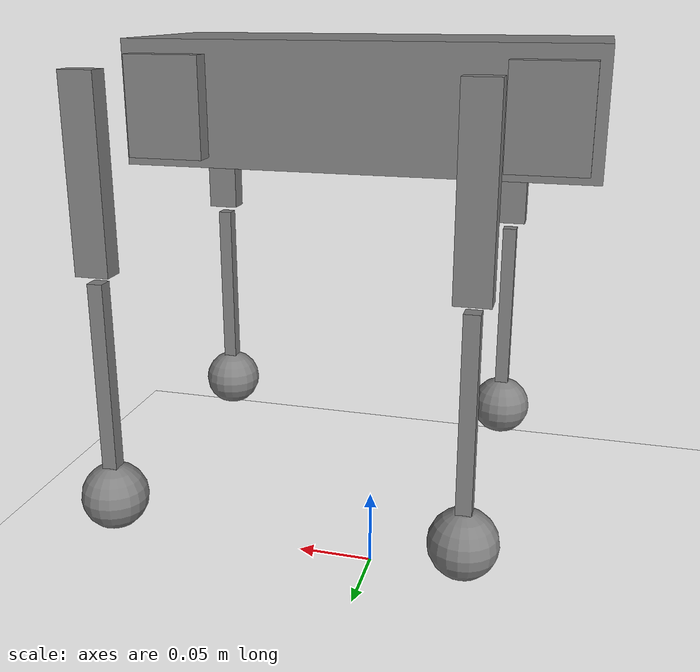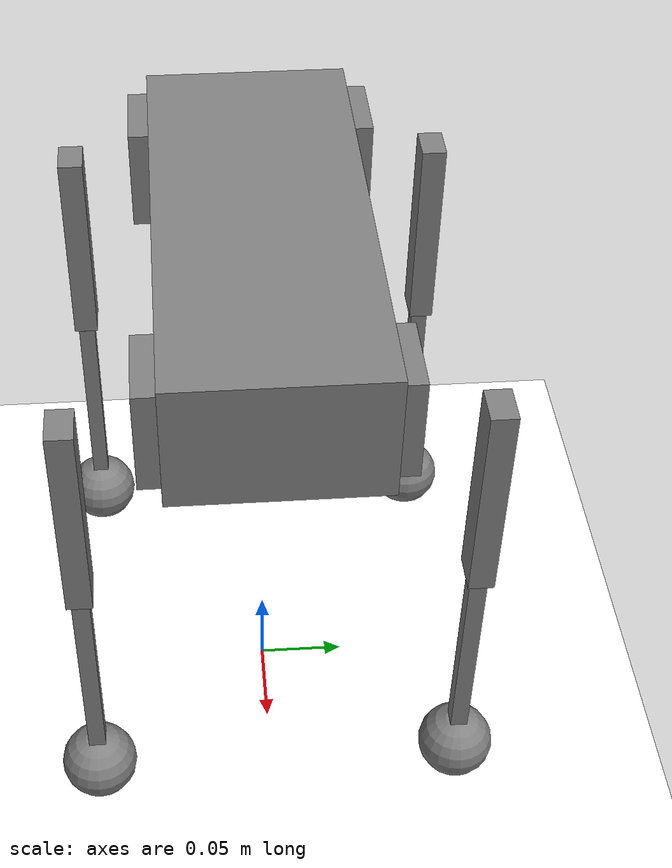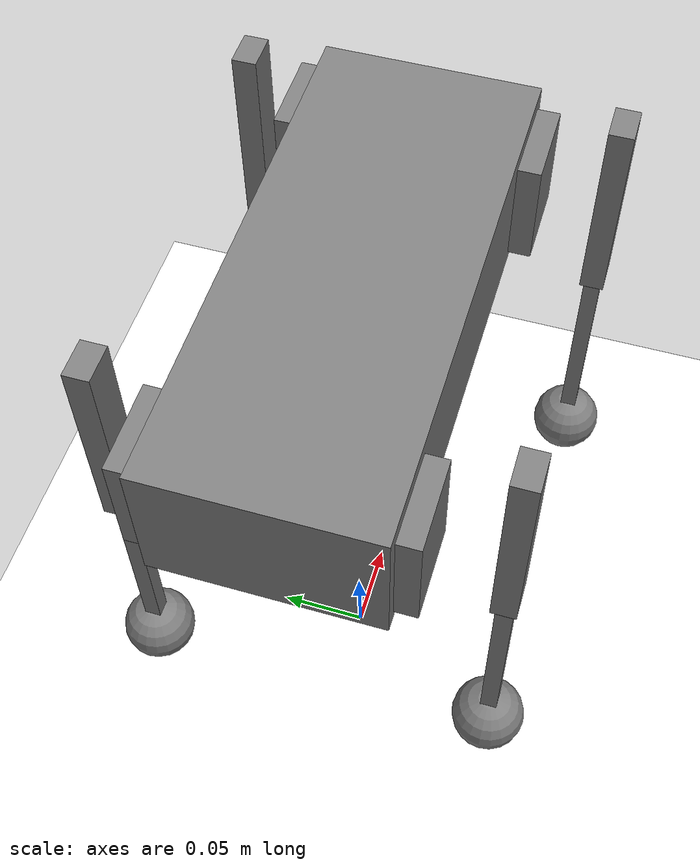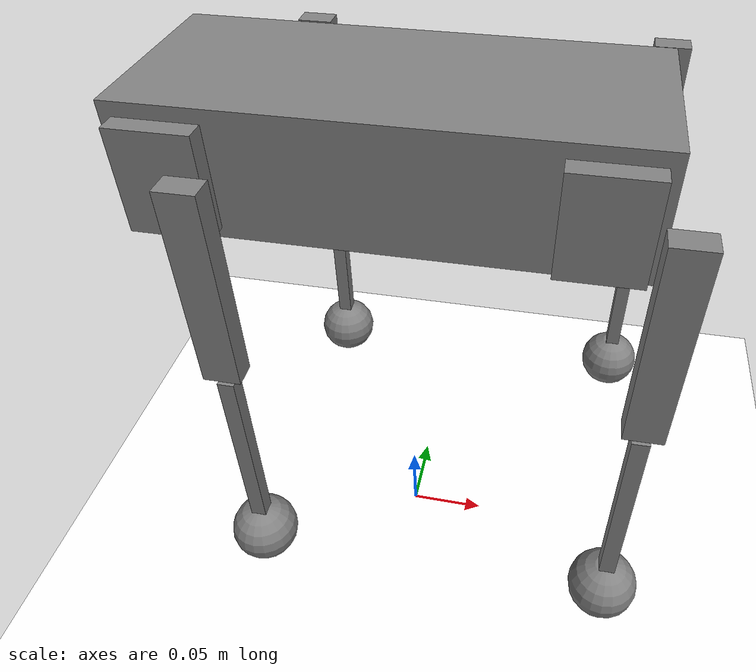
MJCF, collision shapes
<mujoco model="scene">
    <include file="dog.xml"/>

    <visual>
        <headlight diffuse="0.6 0.6 0.6" ambient="0.3 0.3 0.3" specular="0 0 0"/>
        <rgba haze="0.15 0.25 0.35 1"/>
        <global azimuth="160" elevation="-20"/>
    </visual>

    <asset>
        <texture type="skybox" builtin="gradient" rgb1="1 1 1" rgb2="1 1 1" width="800" height="800"/>
        <texture type="2d" name="groundplane" builtin="checker" mark="edge" rgb1="1 1 1" rgb2="1 1 1" markrgb="0 0 0"
            width="300" height="300"/>
        <material name="groundplane" texture="groundplane" texuniform="true" texrepeat="5 5" reflectance="0"/>
    </asset>

    <worldbody>
        <body name="floor">
            <geom name="floor" size="0 0 0.01" type="plane" material="groundplane" contype="1" conaffinity="0"
                priority="1" friction="0.6" condim="3"/>
        </body>
    </worldbody>

    <keyframe>
        <!-- qpos: 7 (freejoint: x y z qw qx qy qz) + 12 (joints in order) -->
        <!-- Joint order: FR_hip, FR_thigh, FR_calf, FL_hip, FL_thigh, FL_calf,
                          RR_hip, RR_thigh, RR_calf, RL_hip, RL_thigh, RL_calf -->
        <key name="home"
            qpos="
    0 0 0.30
    1 0 0 0
      0.0
      0.67
      -1.3
      0.0
      0.67
      -1.3
      0.0
      0.67
      -1.3
      0.0
      0.67
      -1.3
"
            ctrl="
      0.0
      0.67
      -1.3
      0.0
      0.67
      -1.3
      0.0
      0.67
      -1.3
      0.0
      0.67
      -1.3
"/>
    </keyframe>
</mujoco>

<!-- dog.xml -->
<!-- MuJoCo model for quadruped dog robot -->
<!-- Converted from URDF: my_assets/dog_urdf/urdf/dog.urdf -->
<mujoco model="dog">

  <option iterations="1" ls_iterations="5">
    <flag eulerdamp="disable"/>
  </option>
  <compiler angle="radian" meshdir="assets"/>

  <default>
    <default class="dog">
      <joint frictionloss="0.1" armature="0.005"/>
      <position kp="50" dampratio="1"/>
      <default class="visual">
        <geom type="mesh" contype="0" conaffinity="0" group="2"/>
      </default>
      <default class="collision">
        <geom group="3"/>
      </default>
    </default>
  </default>

  <!-- Additional sensors.xml -->
  <sensor>
    <gyro site="imu" name="gyro"/>
    <velocimeter site="imu" name="local_linvel"/>
    <accelerometer site="imu" name="accelerometer"/>
    <framezaxis objtype="site" objname="imu" name="upvector"/>
    <framexaxis objtype="site" objname="imu" name="forwardvector"/>
    <framelinvel objtype="site" objname="imu" name="global_linvel"/>
    <frameangvel objtype="site" objname="imu" name="global_angvel"/>
    <framepos objtype="site" objname="imu" name="position"/>
    <framequat objtype="site" objname="imu" name="orientation"/>
    <framelinvel objtype="site" objname="FR_foot" name="FR_foot_global_linvel"/>
    <framelinvel objtype="site" objname="FL_foot" name="FL_foot_global_linvel"/>
    <framelinvel objtype="site" objname="RR_foot" name="RR_foot_global_linvel"/>
    <framelinvel objtype="site" objname="RL_foot" name="RL_foot_global_linvel"/>
    <framezaxis objtype="site" objname="FR_foot" name="FR_foot_upvector"/>
    <framezaxis objtype="site" objname="FL_foot" name="FL_foot_upvector"/>
    <framezaxis objtype="site" objname="RR_foot" name="RR_foot_upvector"/>
    <framezaxis objtype="site" objname="RL_foot" name="RL_foot_upvector"/>
    <framepos objtype="site" objname="FR_foot" name="FR_foot_pos"/>
    <framepos objtype="site" objname="FL_foot" name="FL_foot_pos"/>
    <framepos objtype="site" objname="RR_foot" name="RR_foot_pos"/>
    <framepos objtype="site" objname="RL_foot" name="RL_foot_pos"/>
  </sensor>

  <!-- Additional joints_properties.xml -->
  <default>
    <default class="dog_motor">
      <geom contype="0" conaffinity="0"/>
      <joint damping="0.60" frictionloss="0.052" armature="0.028"/>
      <position kp="17.8" kv="0.0" forcerange="-3.35 3.35"/>
    </default>
    <default class="backlash">
      <!-- +/- 0.5 deg of backlash -->
      <joint damping="0.01" frictionloss="0" armature="0.01" limited="true"
        range="-0.008726646259971648 0.008726646259971648"/>
    </default>
  </default>

  <worldbody>
    <body name="base" pos="0 0 0.30">
      <freejoint name="floating_base"/>
      <site name="imu" pos="0.0 0.0 0.02"/>

      <!-- Link trunk -->
      <body name="trunk" pos="0 0 0" childclass="dog">
        <inertial pos="-0.0000265 0.0000000 0.0055159" mass="1.1320046"
          fullinertia="0.0014531 0.0060976 0.0071152 -0.0000092 -0.0000001 0.0000000"/>
        <!-- Visual: trunk -->
        <geom type="mesh" class="visual" mesh="trunk" material="trunk_material"/>
        <!-- Collision: trunk box -->
        <geom class="collision" type="box" size="0.1325 0.05475 0.035" pos="0 0 0.01"/>

        <!-- ==================== FR (Front-Right) leg ==================== -->
        <body name="FR_hip" pos="0.1305 -0.03923 0.019">
          <joint name="FR_hip_joint" type="hinge" axis="1 0 0"
            range="-0.802851455917 0.802851455917" class="dog_motor"/>
          <inertial pos="-0.0267598 -0.0023151 -0.0094611" mass="0.0843956"
            fullinertia="0.0000207 0.0000234 0.0000146 -0.0000004 0.0000002 0.0000001"/>
          <geom type="mesh" class="visual" mesh="FR_hip" material="hip_material"/>
          <geom class="collision" type="box" size="0.02175 0.021 0.02825" pos="-0.026 -0.006 -0.01"/>

          <body name="FR_thigh" pos="-0.02585 -0.024 -0.01">
            <joint name="FR_thigh_joint" type="hinge" axis="0 1 0"
              range="-1.0471975512 4.18879020479" class="dog_motor"/>
            <inertial pos="0.0017380 -0.0320053 -0.0336023" mass="0.1351927"
              fullinertia="0.0002128 0.0001953 0.0000461 -0.0000023 -0.0000185 0.0000224"/>
            <geom type="mesh" class="visual" mesh="FR_thigh" material="thigh_material"/>
            <geom class="collision" type="box" size="0.01 0.0065 0.05568" pos="0.03 -0.034 -0.033"/>

            <body name="FR_calf" pos="0.03 -0.0081 -0.10725">
              <joint name="FR_calf_joint" type="hinge" axis="0 1 0"
                range="-2.6965336943 -0.916297857297" class="dog_motor"/>
              <inertial pos="0.0004209 -0.0271693 -0.0219402" mass="0.0993956"
                fullinertia="0.0001117 0.0001086 0.0000130 0.0000001 -0.0000033 -0.0000012"/>
              <geom type="mesh" class="visual" mesh="FR_calf" material="calf_material"/>
              <geom class="collision" type="box" size="0.0045 0.0045 0.06" pos="0.000 -0.026 -0.046"/>

              <!-- FR foot (fixed to calf) -->
              <body name="FR_foot_body" pos="-9.305E-05 -0.0261 -0.1184">
                <inertial pos="-0.0065101 0.0000000 -0.0064928" mass="0.0060000"
                  fullinertia="0.0000008 0.0000008 0.0000008 0.0000000 -0.0000002 0.0000000"/>
                <geom type="mesh" class="visual" mesh="FR_foot" material="foot_material"/>
                <geom class="collision" type="sphere" size="0.02" name="FR_foot_collision"/>
                <site group="0" name="FR_foot" pos="0 0 0"/>
              </body>
            </body>
          </body>
        </body>

        <!-- ==================== FL (Front-Left) leg ==================== -->
        <body name="FL_hip" pos="0.1305 0.03877 0.019">
          <joint name="FL_hip_joint" type="hinge" axis="1 0 0"
            range="-0.802851455917 0.802851455917" class="dog_motor"/>
          <inertial pos="-0.0267598 0.0023151 -0.0095722" mass="0.0843956"
            fullinertia="0.0000207 0.0000235 0.0000146 0.0000004 0.0000002 -0.0000001"/>
          <geom type="mesh" class="visual" mesh="FL_hip" material="hip_material"/>
          <geom class="collision" type="box" size="0.02175 0.021 0.02825" pos="-0.026 0.006 -0.01"/>

          <body name="FL_thigh" pos="-0.02585 0.024 -0.010445">
            <joint name="FL_thigh_joint" type="hinge" axis="0 1 0"
              range="-1.0471975512 4.18879020479" class="dog_motor"/>
            <inertial pos="0.0017380 0.0320052 -0.0336023" mass="0.1351927"
              fullinertia="0.0002128 0.0001953 0.0000461 0.0000023 -0.0000185 -0.0000224"/>
            <geom type="mesh" class="visual" mesh="FL_thigh" material="thigh_material"/>
            <geom class="collision" type="box" size="0.01 0.0065 0.05568" pos="0.03 0.034 -0.033"/>

            <body name="FL_calf" pos="0.03 0.0081 -0.107">
              <joint name="FL_calf_joint" type="hinge" axis="0 1 0"
                range="-2.6965336943 -0.916297857297" class="dog_motor"/>
              <inertial pos="0.0004209 0.0271693 -0.0220310" mass="0.0993956"
                fullinertia="0.0001121 0.0001090 0.0000130 -0.0000001 -0.0000033 0.0000011"/>
              <geom type="mesh" class="visual" mesh="FL_calf" material="calf_material"/>
              <geom class="collision" type="box" size="0.0045 0.0045 0.06" pos="0.000 0.026 -0.046"/>

              <!-- FL foot (fixed to calf) -->
              <body name="FL_foot_body" pos="-9.305E-05 0.0261 -0.11865">
                <inertial pos="-0.0065101 0.0000000 -0.0064928" mass="0.0060000"
                  fullinertia="0.0000008 0.0000008 0.0000008 0.0000000 -0.0000002 0.0000000"/>
                <geom type="mesh" class="visual" mesh="FL_foot" material="foot_material"/>
                <geom class="collision" type="sphere" size="0.02" name="FL_foot_collision"/>
                <site group="0" name="FL_foot" pos="0 0 0"/>
              </body>
            </body>
          </body>
        </body>

        <!-- ==================== RR (Rear-Right) leg ==================== -->
        <body name="RR_hip" pos="-0.1305 -0.03877 0.019">
          <joint name="RR_hip_joint" type="hinge" axis="1 0 0"
            range="-0.802851455917 0.802851455917" class="dog_motor"/>
          <inertial pos="0.0267597 -0.0023151 -0.0094611" mass="0.0843956"
            fullinertia="0.0000207 0.0000234 0.0000146 0.0000004 0.0000002 0.0000001"/>
          <geom type="mesh" class="visual" mesh="RR_hip" material="hip_material"/>
          <geom class="collision" type="box" size="0.02175 0.021 0.02825" pos="0.026 -0.006 -0.01"/>

          <body name="RR_thigh" pos="0.02585 -0.024 -0.01">
            <joint name="RR_thigh_joint" type="hinge" axis="0 1 0"
              range="-1.0471975512 4.18879020479" class="dog_motor"/>
            <inertial pos="0.0017380 -0.0320053 -0.0336023" mass="0.1351927"
              fullinertia="0.0002128 0.0001953 0.0000461 -0.0000023 -0.0000185 0.0000224"/>
            <geom type="mesh" class="visual" mesh="RR_thigh" material="thigh_material"/>
            <geom class="collision" type="box" size="0.01 0.0065 0.05568" pos="0.03 -0.034 -0.033"/>

            <body name="RR_calf" pos="0.03 -0.0081 -0.10725">
              <joint name="RR_calf_joint" type="hinge" axis="0 1 0"
                range="-2.6965336943 -0.916297857297" class="dog_motor"/>
              <inertial pos="0.0004209 -0.0271693 -0.0219402" mass="0.0993956"
                fullinertia="0.0001117 0.0001086 0.0000130 0.0000001 -0.0000033 -0.0000012"/>
              <geom type="mesh" class="visual" mesh="RR_calf" material="calf_material"/>
              <geom class="collision" type="box" size="0.0045 0.0045 0.06" pos="0.000 -0.026 -0.046"/>

              <!-- RR foot (fixed to calf) -->
              <body name="RR_foot_body" pos="-9.305E-05 -0.0261 -0.1184">
                <inertial pos="-0.0065101 0.0000000 -0.0064928" mass="0.0060000"
                  fullinertia="0.0000008 0.0000008 0.0000008 0.0000000 -0.0000002 0.0000000"/>
                <geom type="mesh" class="visual" mesh="RR_foot" material="foot_material"/>
                <geom class="collision" type="sphere" size="0.02" name="RR_foot_collision"/>
                <site group="0" name="RR_foot" pos="0 0 0"/>
              </body>
            </body>
          </body>
        </body>

        <!-- ==================== RL (Rear-Left) leg ==================== -->
        <body name="RL_hip" pos="-0.1305 0.03923 0.019">
          <joint name="RL_hip_joint" type="hinge" axis="1 0 0"
            range="-0.802851455917 0.802851455917" class="dog_motor"/>
          <inertial pos="0.0267597 0.0023151 -0.0094611" mass="0.0843956"
            fullinertia="0.0000207 0.0000234 0.0000146 -0.0000004 0.0000002 -0.0000001"/>
          <geom type="mesh" class="visual" mesh="RL_hip" material="hip_material"/>
          <geom class="collision" type="box" size="0.02175 0.021 0.02825" pos="0.026 0.006 -0.01"/>

          <body name="RL_thigh" pos="0.02585 0.024 -0.01">
            <joint name="RL_thigh_joint" type="hinge" axis="0 1 0"
              range="-1.0471975512 4.18879020479" class="dog_motor"/>
            <inertial pos="0.0017380 0.0320052 -0.0336023" mass="0.1351927"
              fullinertia="0.0002128 0.0001953 0.0000461 0.0000023 -0.0000185 -0.0000224"/>
            <geom type="mesh" class="visual" mesh="RL_thigh" material="thigh_material"/>
            <geom class="collision" type="box" size="0.01 0.0065 0.05568" pos="0.03 0.034 -0.033"/>

            <body name="RL_calf" pos="0.03 0.0081 -0.107">
              <joint name="RL_calf_joint" type="hinge" axis="0 1 0"
                range="-2.6965336943 -0.916297857297" class="dog_motor"/>
              <inertial pos="0.0004209 0.0271690 -0.0220310" mass="0.0993956"
                fullinertia="0.0001121 0.0001090 0.0000130 -0.0000001 -0.0000033 0.0000011"/>
              <geom type="mesh" class="visual" mesh="RL_calf" material="calf_material"/>
              <geom class="collision" type="box" size="0.0045 0.0045 0.06" pos="0.000 0.026 -0.046"/>

              <!-- RL foot (fixed to calf) -->
              <body name="RL_foot_body" pos="-9.305E-05 0.0261 -0.11865">
                <inertial pos="-0.0065101 0.0000000 -0.0064928" mass="0.0060000"
                  fullinertia="0.0000008 0.0000008 0.0000008 0.0000000 -0.0000002 0.0000000"/>
                <geom type="mesh" class="visual" mesh="RL_foot" material="foot_material"/>
                <geom class="collision" type="sphere" size="0.02" name="RL_foot_collision"/>
                <site group="0" name="RL_foot" pos="0 0 0"/>
              </body>
            </body>
          </body>
        </body>

      </body>
    </body>
  </worldbody>

  <asset>
    <mesh file="trunk.STL"/>
    <mesh file="FR_hip.STL"/>
    <mesh file="FR_thigh.STL"/>
    <mesh file="FR_calf.STL"/>
    <mesh file="FR_foot.STL"/>
    <mesh file="FL_hip.STL"/>
    <mesh file="FL_thigh.STL"/>
    <mesh file="FL_calf.STL"/>
    <mesh file="FL_foot.STL"/>
    <mesh file="RR_hip.STL"/>
    <mesh file="RR_thigh.STL"/>
    <mesh file="RR_calf.STL"/>
    <mesh file="RR_foot.STL"/>
    <mesh file="RL_hip.STL"/>
    <mesh file="RL_thigh.STL"/>
    <mesh file="RL_calf.STL"/>
    <mesh file="RL_foot.STL"/>
    <material name="trunk_material" rgba="0.3 0.3 0.3 1"/>
    <material name="hip_material" rgba="0.6 0.6 0.6 1"/>
    <material name="thigh_material" rgba="0.5 0.5 0.5 1"/>
    <material name="calf_material" rgba="0.4 0.4 0.4 1"/>
    <material name="foot_material" rgba="0.2 0.2 0.2 1"/>
  </asset>

  <actuator>
    <position class="dog_motor" name="FR_hip_joint" joint="FR_hip_joint" inheritrange="1"/>
    <position class="dog_motor" name="FR_thigh_joint" joint="FR_thigh_joint" inheritrange="1"/>
    <position class="dog_motor" name="FR_calf_joint" joint="FR_calf_joint" inheritrange="1"/>
    <position class="dog_motor" name="FL_hip_joint" joint="FL_hip_joint" inheritrange="1"/>
    <position class="dog_motor" name="FL_thigh_joint" joint="FL_thigh_joint" inheritrange="1"/>
    <position class="dog_motor" name="FL_calf_joint" joint="FL_calf_joint" inheritrange="1"/>
    <position class="dog_motor" name="RR_hip_joint" joint="RR_hip_joint" inheritrange="1"/>
    <position class="dog_motor" name="RR_thigh_joint" joint="RR_thigh_joint" inheritrange="1"/>
    <position class="dog_motor" name="RR_calf_joint" joint="RR_calf_joint" inheritrange="1"/>
    <position class="dog_motor" name="RL_hip_joint" joint="RL_hip_joint" inheritrange="1"/>
    <position class="dog_motor" name="RL_thigh_joint" joint="RL_thigh_joint" inheritrange="1"/>
    <position class="dog_motor" name="RL_calf_joint" joint="RL_calf_joint" inheritrange="1"/>
  </actuator>

  <equality/>
</mujoco>
